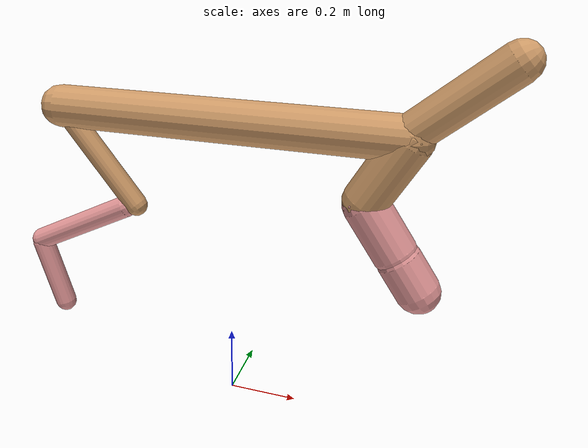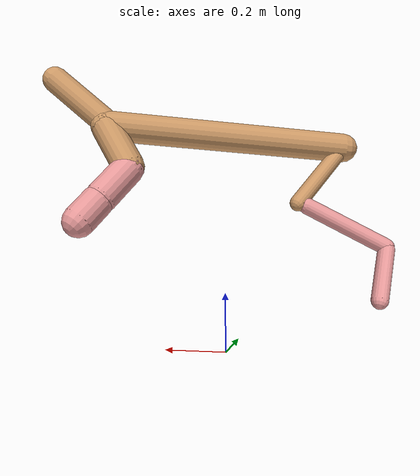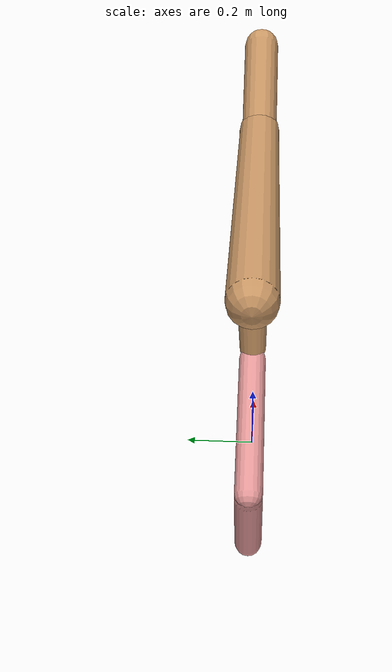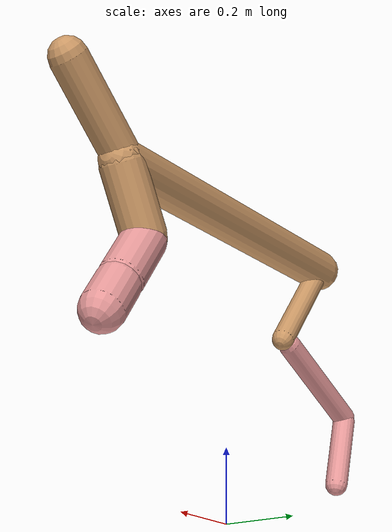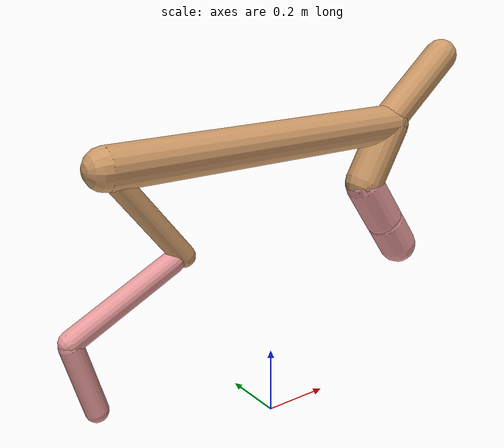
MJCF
<mujoco model="cheetah">
  <compiler angle="radian" coordinate="local" inertiafromgeom="true" settotalmass="14" />
  <default>
    <joint armature=".1" damping=".01" limited="true" solimplimit="0 .8 .03" solreflimit=".02 1" stiffness="8" />
    <geom conaffinity="0" condim="3" contype="1" friction="0.8 .1 .1" rgba="0.8 0.6 .4 1" solimp="0.0 0.8 0.01" solref="0.02 1" />
    <motor ctrllimited="true" ctrlrange="-1 1" />
  </default>
  <size nstack="300000" nuser_geom="1" />
  <option gravity="0 0 -9.81" timestep="0.01" />
  <worldbody>
    <body name="torso" pos="0.0 0.0 0.8470604982925449">
      <joint armature="0" axis="1 0 0" damping="0" limited="false" name="ignorex" pos="0 0 0" stiffness="0" type="slide" />
      <joint armature="0" axis="0 0 1" damping="0" limited="false" name="ignorez" pos="0 0 0" stiffness="0" type="slide" />
      <joint armature="0" axis="0 1 0" damping="0" limited="false" name="ignorey" pos="0 0 0" stiffness="0" type="hinge" />
      <geom fromto="-0.5 0.0 0.0 0.46747521226258015 0.0 0.0" name="torso" size="0.05909909370208995" type="capsule" />
      <geom axisangle="0 1 0 .87" name="head" pos="0.5674752122625801 0.0 0.1" size="0.051778816165787694 0.15" type="capsule" />

      <body name="bthigh" pos="-.5 0 0">
        <joint axis="0 1 0" damping="6" name="bthigh" pos="0 0 0" range="-.52 1.05" stiffness="240" type="hinge" />
        <geom axisangle="0 1 0 -3.8" name="bthigh" pos="0.11101807915610845 0.0 -0.144323502902941" size="0.0322 0.1630709934342534" type="capsule" />
        <body name="bshin" pos="0.1820361583122169 0.0 -0.278647005805882">
          <joint axis="0 1 0" damping="4.5" name="bshin" pos="0 0 0" range="-.785 .785" stiffness="180" type="hinge" />
          <geom axisangle="0 1 0 -2.03" name="bshin" pos="-0.15672053920273504 0.0 -0.07836026960136752" rgba="0.9 0.6 0.6 1" size="0.0322 0.16869413113888285" type="capsule" />
          <body name="bfoot" pos="-0.3134410784054701 0.0 -0.15672053920273504">
            <joint axis="0 1 0" damping="3" name="bfoot" pos="0 0 0" range="-.4 .785" stiffness="120" type="hinge" />
            <geom axisangle="0 1 0 -.27" name="bfoot" pos="0.03346142450866803 0.0 -0.1081919392446933" rgba="0.9 0.6 0.6 1" size="0.0322 0.10571498884703326" type="capsule" />
            <inertial mass="10" />
          </body>
        </body>
      </body>
      <body name="fthigh" pos="0.46747521226258015 0.0 0.0">
        <joint axis="0 1 0" damping="4.5" name="fthigh" pos="0 0 0" range="-1.5 0.8" stiffness="180" type="hinge" />
        <geom axisangle="0 1 0 .52" name="fthigh" pos="-0.05240436381671135 0.0 -0.08983605225721944" size="0.060612329739837476 0.09807908712356087" type="capsule" />
        <body name="fshin" pos="-0.1048087276334227 0.0 -0.17967210451443888">
          <joint axis="0 1 0" damping="3" name="fshin" pos="0 0 0" range="-1.2 1.1" stiffness="120" type="hinge" />
          <geom axisangle="0 1 0 -.6" name="fshin" pos="0.04870479962554619 0.0 -0.06743741486614088" rgba="0.9 0.6 0.6 1" size="0.060612329739837476 0.07816829500073272" type="capsule" />
          <body name="ffoot" pos="0.09740959925109238 0.0 -0.13487482973228176">
            <joint axis="0 1 0" damping="1.5" name="ffoot" pos="0 0 0" range="-3.1 -0.3" stiffness="60" type="hinge" />
            <geom axisangle="0 1 0 -.6" name="ffoot" pos="0.035061184877088536 0.0 -0.05453962091991551" rgba="0.9 0.6 0.6 1" size="0.060612329739837476 0.0516205721702952" type="capsule" />
            <inertial mass="10" />
          </body>
        </body>
      </body>
    </body>
  </worldbody>
  <actuator>
    <motor gear="120" joint="bthigh" name="bthigh" />
    <motor gear="90" joint="bshin" name="bshin" />
    <motor gear="60" joint="bfoot" name="bfoot" />
    <motor gear="120" joint="fthigh" name="fthigh" />
    <motor gear="60" joint="fshin" name="fshin" />
    <motor gear="30" joint="ffoot" name="ffoot" />
  </actuator>
</mujoco>
